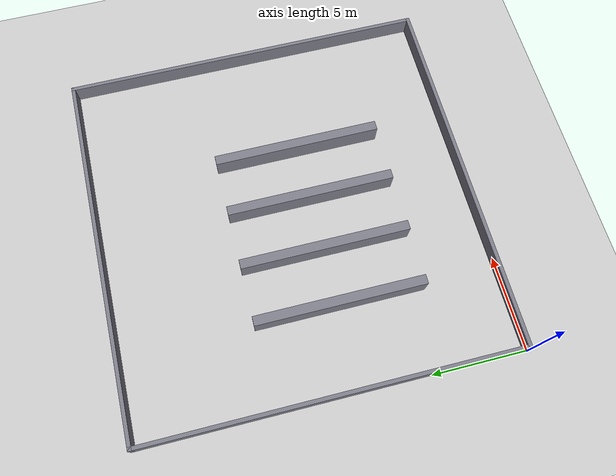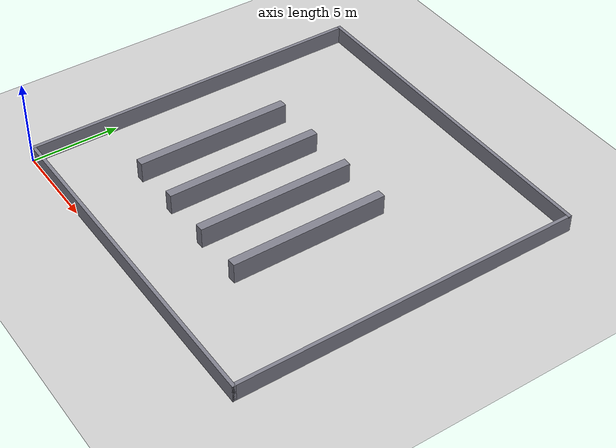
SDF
<?xml version='1.0'?>
<sdf version='1.6'>
  <world name='warehouse'>
    <include><uri>model://sun</uri></include>
    <include><uri>model://ground_plane</uri></include>
    <scene><ambient>0.5 0.5 0.5 1</ambient><background>0.7 0.7 0.7 1</background></scene>
    <!-- Lighter physics (4x fewer steps) so the sim keeps up with Nav2 on a
         CPU-capped host and the /clock advances smoothly. -->
    <physics type='ode'><real_time_update_rate>250</real_time_update_rate><max_step_size>0.004</max_step_size></physics>

    <model name='wall_s'>
      <static>true</static>
      <pose>10.000 0.100 0.500 0 0 0</pose>
      <link name='link'>
        <collision name='c'><geometry><box><size>20.000 0.200 1.000</size></box></geometry></collision>
        <visual name='v'><geometry><box><size>20.000 0.200 1.000</size></box></geometry>
          <material><ambient>0.4 0.4 0.45 1</ambient><diffuse>0.5 0.5 0.55 1</diffuse></material>
        </visual>
      </link>
    </model>
    <model name='wall_n'>
      <static>true</static>
      <pose>10.000 19.900 0.500 0 0 0</pose>
      <link name='link'>
        <collision name='c'><geometry><box><size>20.000 0.200 1.000</size></box></geometry></collision>
        <visual name='v'><geometry><box><size>20.000 0.200 1.000</size></box></geometry>
          <material><ambient>0.4 0.4 0.45 1</ambient><diffuse>0.5 0.5 0.55 1</diffuse></material>
        </visual>
      </link>
    </model>
    <model name='wall_w'>
      <static>true</static>
      <pose>0.100 10.000 0.500 0 0 0</pose>
      <link name='link'>
        <collision name='c'><geometry><box><size>0.200 20.000 1.000</size></box></geometry></collision>
        <visual name='v'><geometry><box><size>0.200 20.000 1.000</size></box></geometry>
          <material><ambient>0.4 0.4 0.45 1</ambient><diffuse>0.5 0.5 0.55 1</diffuse></material>
        </visual>
      </link>
    </model>
    <model name='wall_e'>
      <static>true</static>
      <pose>19.900 10.000 0.500 0 0 0</pose>
      <link name='link'>
        <collision name='c'><geometry><box><size>0.200 20.000 1.000</size></box></geometry></collision>
        <visual name='v'><geometry><box><size>0.200 20.000 1.000</size></box></geometry>
          <material><ambient>0.4 0.4 0.45 1</ambient><diffuse>0.5 0.5 0.55 1</diffuse></material>
        </visual>
      </link>
    </model>
    <model name='shelf_1'>
      <static>true</static>
      <pose>4.500 8.500 0.600 0 0 0</pose>
      <link name='link'>
        <collision name='c'><geometry><box><size>0.500 9.000 1.200</size></box></geometry></collision>
        <visual name='v'><geometry><box><size>0.500 9.000 1.200</size></box></geometry>
          <material><ambient>0.4 0.4 0.45 1</ambient><diffuse>0.5 0.5 0.55 1</diffuse></material>
        </visual>
      </link>
    </model>
    <model name='shelf_2'>
      <static>true</static>
      <pose>7.500 8.500 0.600 0 0 0</pose>
      <link name='link'>
        <collision name='c'><geometry><box><size>0.500 9.000 1.200</size></box></geometry></collision>
        <visual name='v'><geometry><box><size>0.500 9.000 1.200</size></box></geometry>
          <material><ambient>0.4 0.4 0.45 1</ambient><diffuse>0.5 0.5 0.55 1</diffuse></material>
        </visual>
      </link>
    </model>
    <model name='shelf_3'>
      <static>true</static>
      <pose>10.500 8.500 0.600 0 0 0</pose>
      <link name='link'>
        <collision name='c'><geometry><box><size>0.500 9.000 1.200</size></box></geometry></collision>
        <visual name='v'><geometry><box><size>0.500 9.000 1.200</size></box></geometry>
          <material><ambient>0.4 0.4 0.45 1</ambient><diffuse>0.5 0.5 0.55 1</diffuse></material>
        </visual>
      </link>
    </model>
    <model name='shelf_4'>
      <static>true</static>
      <pose>13.500 8.500 0.600 0 0 0</pose>
      <link name='link'>
        <collision name='c'><geometry><box><size>0.500 9.000 1.200</size></box></geometry></collision>
        <visual name='v'><geometry><box><size>0.500 9.000 1.200</size></box></geometry>
          <material><ambient>0.4 0.4 0.45 1</ambient><diffuse>0.5 0.5 0.55 1</diffuse></material>
        </visual>
      </link>
    </model>
  <gui><camera name='user_camera'><pose>26 -15 28 0 0.755 2.14</pose><view_controller>orbit</view_controller></camera></gui></world>
</sdf>
